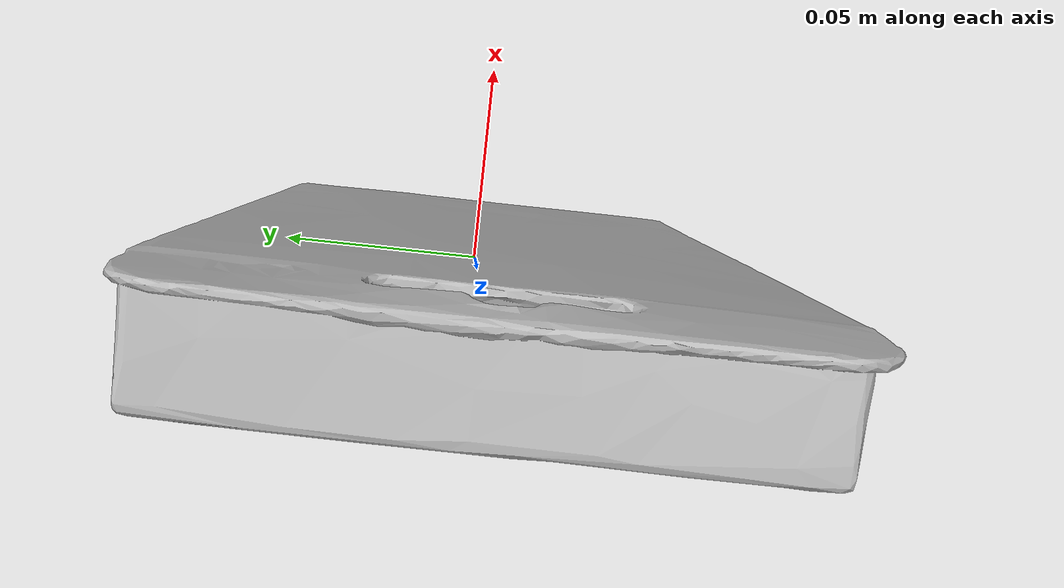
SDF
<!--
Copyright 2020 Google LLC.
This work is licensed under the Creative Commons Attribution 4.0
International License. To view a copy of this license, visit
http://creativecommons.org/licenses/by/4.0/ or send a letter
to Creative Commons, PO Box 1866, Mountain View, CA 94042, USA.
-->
<?xml version="1.0" ?>
<sdf version="1.6">
  <model name="Mattel_SKIP_BO_Card_Game">
    <link name="link_0">
      <visual name="visual">
        <geometry>
          <mesh>
            <uri>meshes/model.obj</uri>
          </mesh>
        </geometry>
      </visual>
      <collision name="collision_0">
        <geometry>
          <mesh>
            <uri>meshes/model.obj</uri>
          </mesh>
        </geometry>
      </collision>
    </link>
  </model>
</sdf>
